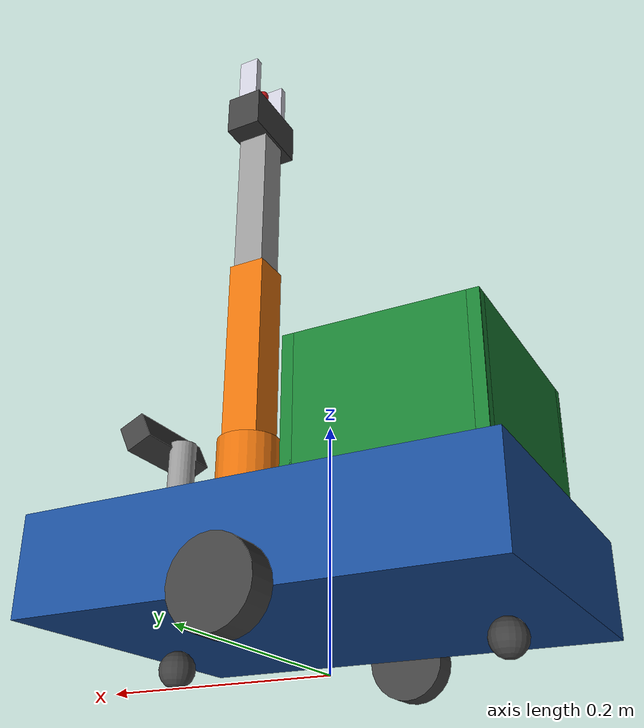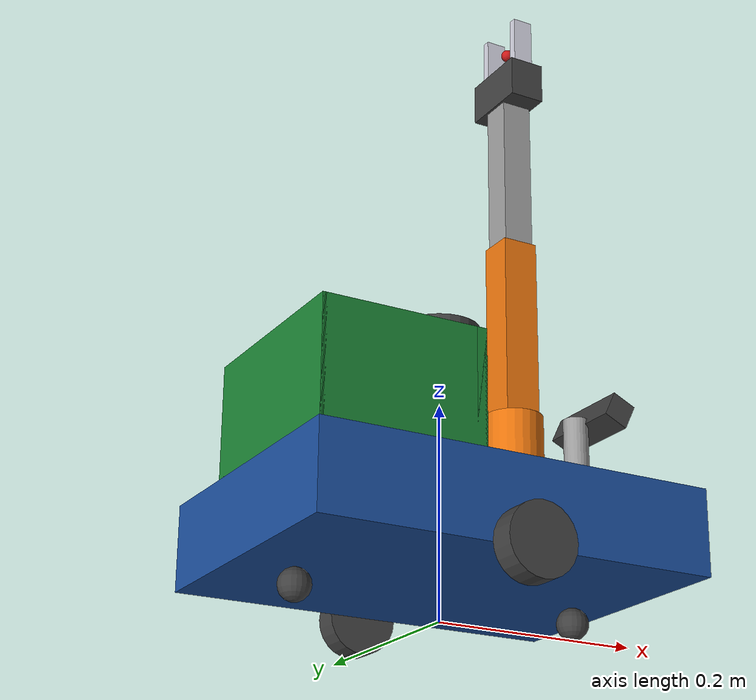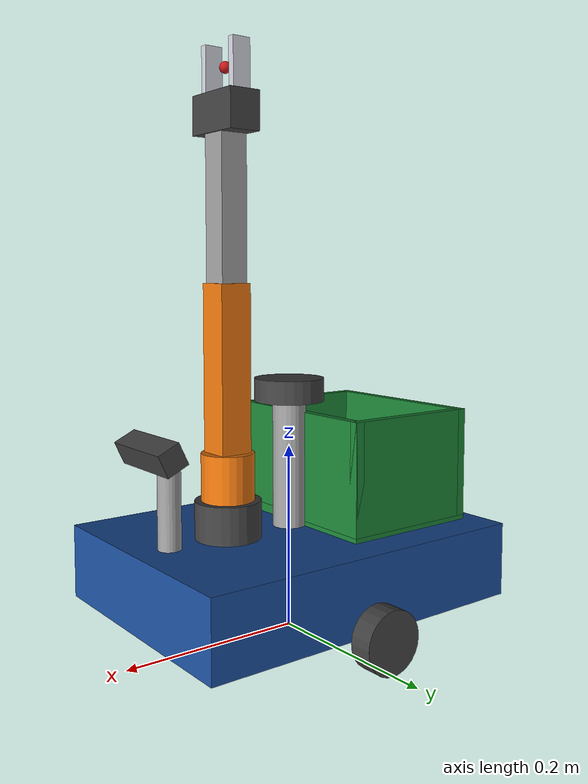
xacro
<?xml version="1.0" ?>
<robot name="autonomous_mobile_manipulator" xmlns:xacro="http://ros.org/wiki/xacro">

  <!-- Materials                 -->
  <material name="black">
    <color rgba="0.1 0.1 0.1 1.0"/>
  </material>

  <material name="dark_grey">
    <color rgba="0.25 0.25 0.25 1.0"/>
  </material>

  <material name="light_grey">
    <color rgba="0.6 0.6 0.6 1.0"/>
  </material>

  <material name="chassis_blue">
    <color rgba="0.1 0.3 0.6 1.0"/>
  </material>

  <material name="bin_green">
    <color rgba="0.1 0.5 0.2 1.0"/>
  </material>

  <material name="arm_orange">
    <color rgba="0.9 0.45 0.05 1.0"/>
  </material>

  <material name="gripper_metal">
    <color rgba="0.8 0.8 0.85 1.0"/>
  </material>

  <material name="sensor_red">
    <color rgba="0.8 0.1 0.1 1.0"/>
  </material>

  <!-- Base Footprint & Link     -->
  <link name="base_footprint"/>

  <joint name="base_joint" type="fixed">
    <parent link="base_footprint"/>
    <child link="base_link" />
    <origin xyz="0 0 0.033" rpy="0 0 0"/>
  </joint>

  <link name="base_link">
    <!-- Main base plate -->
    <visual>
      <origin xyz="0 0 0.04" rpy="0 0 0"/>
      <geometry>
        <box size="0.38 0.28 0.08"/>
      </geometry>
      <material name="chassis_blue"/>
    </visual>
    <collision>
      <origin xyz="0 0 0.04" rpy="0 0 0"/>
      <geometry>
        <box size="0.38 0.28 0.08"/>
      </geometry>
    </collision>

    <inertial>
      <origin xyz="-0.02 0 0.05" rpy="0 0 0"/>
      <mass value="4.5"/>
      <inertia ixx="0.04" ixy="0.0" ixz="0.0"
               iyy="0.06" iyz="0.0"
               izz="0.08" />
    </inertial>
  </link>

  <!-- Wheels                    -->
  <!-- Left Wheel -->
  <joint name="wheel_left_joint" type="continuous">
    <parent link="base_link"/>
    <child link="wheel_left_link"/>
    <origin xyz="0.0 0.155 0.0" rpy="-1.570796 0 0"/>
    <axis xyz="0 0 1"/>
  </joint>

  <link name="wheel_left_link">
    <visual>
      <origin xyz="0 0 0" rpy="0 0 0"/>
      <geometry>
        <cylinder length="0.025" radius="0.033"/>
      </geometry>
      <material name="dark_grey"/>
    </visual>
    <collision>
      <origin xyz="0 0 0" rpy="0 0 0"/>
      <geometry>
        <cylinder length="0.025" radius="0.033"/>
      </geometry>
    </collision>
    <inertial>
      <origin xyz="0 0 0" />
      <mass value="0.1" />
      <inertia ixx="0.0001" ixy="0.0" ixz="0.0"
               iyy="0.0001" iyz="0.0"
               izz="0.0001" />
    </inertial>
  </link>

  <!-- Right Wheel -->
  <joint name="wheel_right_joint" type="continuous">
    <parent link="base_link"/>
    <child link="wheel_right_link"/>
    <origin xyz="0.0 -0.155 0.0" rpy="-1.570796 0 0"/>
    <axis xyz="0 0 1"/>
  </joint>

  <link name="wheel_right_link">
    <visual>
      <origin xyz="0 0 0" rpy="0 0 0"/>
      <geometry>
        <cylinder length="0.025" radius="0.033"/>
      </geometry>
      <material name="dark_grey"/>
    </visual>
    <collision>
      <origin xyz="0 0 0" rpy="0 0 0"/>
      <geometry>
        <cylinder length="0.025" radius="0.033"/>
      </geometry>
    </collision>
    <inertial>
      <origin xyz="0 0 0" />
      <mass value="0.1" />
      <inertia ixx="0.0001" ixy="0.0" ixz="0.0"
               iyy="0.0001" iyz="0.0"
               izz="0.0001" />
    </inertial>
  </link>

  <!-- Front Caster Wheel -->
  <joint name="caster_front_joint" type="fixed">
    <parent link="base_link"/>
    <child link="caster_front_link"/>
    <origin xyz="0.14 0.0 -0.018" rpy="0 0 0"/>
  </joint>

  <link name="caster_front_link">
    <visual>
      <origin xyz="0 0 0" rpy="0 0 0"/>
      <geometry>
        <sphere radius="0.015"/>
      </geometry>
      <material name="dark_grey"/>
    </visual>
    <collision>
      <origin xyz="0 0 0" rpy="0 0 0"/>
      <geometry>
        <sphere radius="0.015"/>
      </geometry>
    </collision>
    <inertial>
      <origin xyz="0 0 0" />
      <mass value="0.05" />
      <inertia ixx="0.00001" ixy="0.0" ixz="0.0"
               iyy="0.00001" iyz="0.0"
               izz="0.00001" />
    </inertial>
  </link>

  <!-- Rear Caster Wheel -->
  <joint name="caster_rear_joint" type="fixed">
    <parent link="base_link"/>
    <child link="caster_rear_link"/>
    <origin xyz="-0.14 0.0 -0.018" rpy="0 0 0"/>
  </joint>

  <link name="caster_rear_link">
    <visual>
      <origin xyz="0 0 0" rpy="0 0 0"/>
      <geometry>
        <sphere radius="0.015"/>
      </geometry>
      <material name="dark_grey"/>
    </visual>
    <collision>
      <origin xyz="0 0 0" rpy="0 0 0"/>
      <geometry>
        <sphere radius="0.015"/>
      </geometry>
    </collision>
    <inertial>
      <origin xyz="0 0 0" />
      <mass value="0.05" />
      <inertia ixx="0.00001" ixy="0.0" ixz="0.0"
               iyy="0.00001" iyz="0.0"
               izz="0.00001" />
    </inertial>
  </link>

  <!-- Built-in Litter Waste Bin -->
  <!-- Mounted on the rear deck of the robot -->
  <joint name="waste_bin_joint" type="fixed">
    <parent link="base_link"/>
    <child link="waste_bin_link"/>
    <origin xyz="-0.09 0 0.08" rpy="0 0 0"/>
  </joint>

  <link name="waste_bin_link">
    <!-- Bin Bottom Plate -->
    <visual>
      <origin xyz="0 0 0.005" rpy="0 0 0"/>
      <geometry>
        <box size="0.16 0.20 0.01"/>
      </geometry>
      <material name="bin_green"/>
    </visual>
    <collision>
      <origin xyz="0 0 0.005" rpy="0 0 0"/>
      <geometry>
        <box size="0.16 0.20 0.01"/>
      </geometry>
    </collision>

    <!-- Bin Front Wall -->
    <visual>
      <origin xyz="0.075 0 0.065" rpy="0 0 0"/>
      <geometry>
        <box size="0.01 0.20 0.12"/>
      </geometry>
      <material name="bin_green"/>
    </visual>
    <collision>
      <origin xyz="0.075 0 0.065" rpy="0 0 0"/>
      <geometry>
        <box size="0.01 0.20 0.12"/>
      </geometry>
    </collision>

    <!-- Bin Rear Wall -->
    <visual>
      <origin xyz="-0.075 0 0.065" rpy="0 0 0"/>
      <geometry>
        <box size="0.01 0.20 0.12"/>
      </geometry>
      <material name="bin_green"/>
    </visual>
    <collision>
      <origin xyz="-0.075 0 0.065" rpy="0 0 0"/>
      <geometry>
        <box size="0.01 0.20 0.12"/>
      </geometry>
    </collision>

    <!-- Bin Left Wall -->
    <visual>
      <origin xyz="0 0.095 0.065" rpy="0 0 0"/>
      <geometry>
        <box size="0.16 0.01 0.12"/>
      </geometry>
      <material name="bin_green"/>
    </visual>
    <collision>
      <origin xyz="0 0.095 0.065" rpy="0 0 0"/>
      <geometry>
        <box size="0.16 0.01 0.12"/>
      </geometry>
    </collision>

    <!-- Bin Right Wall -->
    <visual>
      <origin xyz="0 -0.095 0.065" rpy="0 0 0"/>
      <geometry>
        <box size="0.16 0.01 0.12"/>
      </geometry>
      <material name="bin_green"/>
    </visual>
    <collision>
      <origin xyz="0 -0.095 0.065" rpy="0 0 0"/>
      <geometry>
        <box size="0.16 0.01 0.12"/>
      </geometry>
    </collision>

    <inertial>
      <origin xyz="0 0 0.06" rpy="0 0 0"/>
      <mass value="0.4"/>
      <inertia ixx="0.002" ixy="0.0" ixz="0.0"
               iyy="0.002" iyz="0.0"
               izz="0.002" />
    </inertial>
  </link>

  <!-- Sensor Mast & LiDAR       -->
  <!-- Elevated sensor tower between the bin and arm -->
  <joint name="lidar_mast_joint" type="fixed">
    <parent link="base_link"/>
    <child link="lidar_mast_link"/>
    <origin xyz="0.0 0 0.08" rpy="0 0 0"/>
  </joint>

  <link name="lidar_mast_link">
    <visual>
      <origin xyz="0 0 0.07" rpy="0 0 0"/>
      <geometry>
        <cylinder length="0.14" radius="0.018"/>
      </geometry>
      <material name="light_grey"/>
    </visual>
    <collision>
      <origin xyz="0 0 0.07" rpy="0 0 0"/>
      <geometry>
        <cylinder length="0.14" radius="0.018"/>
      </geometry>
    </collision>
    <inertial>
      <origin xyz="0 0 0.07" rpy="0 0 0"/>
      <mass value="0.1"/>
      <inertia ixx="0.0001" ixy="0" ixz="0" iyy="0.0001" iyz="0" izz="0.0001"/>
    </inertial>
  </link>

  <joint name="scan_joint" type="fixed">
    <parent link="lidar_mast_link"/>
    <child link="base_scan"/>
    <origin xyz="0 0 0.14" rpy="0 0 0"/>
  </joint>

  <link name="base_scan">
    <visual>
      <origin xyz="0 0 0.01" rpy="0 0 0"/>
      <geometry>
        <cylinder length="0.025" radius="0.038"/>
      </geometry>
      <material name="dark_grey"/>
    </visual>
    <collision>
      <origin xyz="0 0 0.01" rpy="0 0 0"/>
      <geometry>
        <cylinder length="0.025" radius="0.038"/>
      </geometry>
    </collision>
    <inertial>
      <mass value="0.12" />
      <origin xyz="0 0 0" />
      <inertia ixx="0.0001" ixy="0.0" ixz="0.0"
               iyy="0.0001" iyz="0.0"
               izz="0.0001" />
    </inertial>
  </link>

  <!-- RGB-D Camera Mount        -->
  <!-- Angled downward on front of chassis to detect ground litter -->
  <joint name="camera_mount_joint" type="fixed">
    <parent link="base_link"/>
    <child link="camera_mount_link"/>
    <origin xyz="0.15 0 0.08" rpy="0 0 0"/>
  </joint>

  <link name="camera_mount_link">
    <visual>
      <origin xyz="0 0 0.05" rpy="0 0 0"/>
      <geometry>
        <cylinder length="0.10" radius="0.012"/>
      </geometry>
      <material name="light_grey"/>
    </visual>
    <collision>
      <origin xyz="0 0 0.05" rpy="0 0 0"/>
      <geometry>
        <cylinder length="0.10" radius="0.012"/>
      </geometry>
    </collision>
    <inertial>
      <mass value="0.05"/>
      <origin xyz="0 0 0.05"/>
      <inertia ixx="0.00005" ixy="0" ixz="0" iyy="0.00005" iyz="0" izz="0.00005"/>
    </inertial>
  </link>

  <joint name="camera_joint" type="fixed">
    <parent link="camera_mount_link"/>
    <child link="camera_link"/>
    <!-- Angled downwards by ~26 deg (0.45 rad) to face ground litter -->
    <origin xyz="0.02 0 0.10" rpy="0 0.45 0"/>
  </joint>

  <link name="camera_link">
    <visual>
      <origin xyz="0 0 0" rpy="0 0 0"/>
      <geometry>
        <box size="0.025 0.09 0.025"/>
      </geometry>
      <material name="dark_grey"/>
    </visual>
    <collision>
      <origin xyz="0 0 0" rpy="0 0 0"/>
      <geometry>
        <box size="0.025 0.09 0.025"/>
      </geometry>
    </collision>
    <inertial>
      <mass value="0.08"/>
      <origin xyz="0 0 0"/>
      <inertia ixx="0.0001" ixy="0" ixz="0" iyy="0.0001" iyz="0" izz="0.0001"/>
    </inertial>
  </link>

  <!-- Standard ROS Optical Frames -->
  <joint name="camera_optical_joint" type="fixed">
    <parent link="camera_link"/>
    <child link="camera_optical_frame"/>
    <origin xyz="0 0 0" rpy="-1.570796 0 -1.570796"/>
  </joint>

  <link name="camera_optical_frame"/>

  <!-- 4-DOF Robotic Manipulator -->
  <!-- Arm Pedestal -->
  <joint name="arm_base_joint" type="fixed">
    <parent link="base_link"/>
    <child link="arm_base_link"/>
    <origin xyz="0.08 0 0.08" rpy="0 0 0"/>
  </joint>

  <link name="arm_base_link">
    <visual>
      <origin xyz="0 0 0.02" rpy="0 0 0"/>
      <geometry>
        <cylinder length="0.04" radius="0.035"/>
      </geometry>
      <material name="dark_grey"/>
    </visual>
    <collision>
      <origin xyz="0 0 0.02" rpy="0 0 0"/>
      <geometry>
        <cylinder length="0.04" radius="0.035"/>
      </geometry>
    </collision>
    <inertial>
      <origin xyz="0 0 0.02" rpy="0 0 0"/>
      <mass value="0.2"/>
      <inertia ixx="0.0002" ixy="0" ixz="0" iyy="0.0002" iyz="0" izz="0.0002"/>
    </inertial>
  </link>

  <!-- Joint 1: Waist / Pan (Rotation about Z: Yaw) -->
  <joint name="arm_waist_joint" type="revolute">
    <parent link="arm_base_link"/>
    <child link="arm_waist_link"/>
    <origin xyz="0 0 0.04" rpy="0 0 0"/>
    <axis xyz="0 0 1"/>
    <limit lower="-3.14159" upper="3.14159" effort="20.0" velocity="2.0"/>
    <dynamics damping="0.5" friction="0.1"/>
  </joint>

  <link name="arm_waist_link">
    <visual>
      <origin xyz="0 0 0.025" rpy="0 0 0"/>
      <geometry>
        <cylinder length="0.05" radius="0.028"/>
      </geometry>
      <material name="arm_orange"/>
    </visual>
    <collision>
      <origin xyz="0 0 0.025" rpy="0 0 0"/>
      <geometry>
        <cylinder length="0.05" radius="0.028"/>
      </geometry>
    </collision>
    <inertial>
      <origin xyz="0 0 0.025" rpy="0 0 0"/>
      <mass value="0.18"/>
      <inertia ixx="0.0002" ixy="0" ixz="0" iyy="0.0002" iyz="0" izz="0.0002"/>
    </inertial>
  </link>

  <!-- Joint 2: Shoulder Pitch (Rotation about Y) -->
  <joint name="arm_shoulder_joint" type="revolute">
    <parent link="arm_waist_link"/>
    <child link="arm_upper_arm_link"/>
    <origin xyz="0 0 0.045" rpy="0 0 0"/>
    <axis xyz="0 1 0"/>
    <limit lower="-1.8" upper="1.8" effort="25.0" velocity="2.0"/>
    <dynamics damping="0.5" friction="0.1"/>
  </joint>

  <link name="arm_upper_arm_link">
    <visual>
      <origin xyz="0 0 0.09" rpy="0 0 0"/>
      <geometry>
        <box size="0.035 0.035 0.18"/>
      </geometry>
      <material name="arm_orange"/>
    </visual>
    <collision>
      <origin xyz="0 0 0.09" rpy="0 0 0"/>
      <geometry>
        <box size="0.035 0.035 0.18"/>
      </geometry>
    </collision>
    <inertial>
      <origin xyz="0 0 0.09" rpy="0 0 0"/>
      <mass value="0.25"/>
      <inertia ixx="0.0008" ixy="0" ixz="0" iyy="0.0008" iyz="0" izz="0.0001"/>
    </inertial>
  </link>

  <!-- Joint 3: Elbow Pitch (Rotation about Y) -->
  <joint name="arm_elbow_joint" type="revolute">
    <parent link="arm_upper_arm_link"/>
    <child link="arm_forearm_link"/>
    <origin xyz="0 0 0.18" rpy="0 0 0"/>
    <axis xyz="0 1 0"/>
    <limit lower="-2.2" upper="2.2" effort="20.0" velocity="2.0"/>
    <dynamics damping="0.5" friction="0.1"/>
  </joint>

  <link name="arm_forearm_link">
    <visual>
      <origin xyz="0 0 0.075" rpy="0 0 0"/>
      <geometry>
        <box size="0.03 0.03 0.15"/>
      </geometry>
      <material name="light_grey"/>
    </visual>
    <collision>
      <origin xyz="0 0 0.075" rpy="0 0 0"/>
      <geometry>
        <box size="0.03 0.03 0.15"/>
      </geometry>
    </collision>
    <inertial>
      <origin xyz="0 0 0.075" rpy="0 0 0"/>
      <mass value="0.18"/>
      <inertia ixx="0.0004" ixy="0" ixz="0" iyy="0.0004" iyz="0" izz="0.0001"/>
    </inertial>
  </link>

  <!-- Joint 4: Wrist Pitch (Rotation about Y) -->
  <joint name="arm_wrist_joint" type="revolute">
    <parent link="arm_forearm_link"/>
    <child link="gripper_base_link"/>
    <origin xyz="0 0 0.15" rpy="0 0 0"/>
    <axis xyz="0 1 0"/>
    <limit lower="-2.0" upper="2.0" effort="15.0" velocity="2.0"/>
    <dynamics damping="0.3" friction="0.05"/>
  </joint>

  <link name="gripper_base_link">
    <visual>
      <origin xyz="0 0 0.02" rpy="0 0 0"/>
      <geometry>
        <box size="0.035 0.07 0.04"/>
      </geometry>
      <material name="dark_grey"/>
    </visual>
    <collision>
      <origin xyz="0 0 0.02" rpy="0 0 0"/>
      <geometry>
        <box size="0.035 0.07 0.04"/>
      </geometry>
    </collision>
    <inertial>
      <origin xyz="0 0 0.02" rpy="0 0 0"/>
      <mass value="0.12"/>
      <inertia ixx="0.0001" ixy="0" ixz="0" iyy="0.0001" iyz="0" izz="0.0001"/>
    </inertial>
  </link>

  <!-- Gripper Left Finger -->
  <joint name="gripper_left_joint" type="prismatic">
    <parent link="gripper_base_link"/>
    <child link="gripper_left_finger"/>
    <origin xyz="0 0.025 0.04" rpy="0 0 0"/>
    <axis xyz="0 1 0"/>
    <limit lower="-0.015" upper="0.02" effort="10.0" velocity="0.2"/>
    <dynamics damping="0.1" friction="0.05"/>
  </joint>

  <link name="gripper_left_finger">
    <visual>
      <origin xyz="0 0 0.025" rpy="0 0 0"/>
      <geometry>
        <box size="0.02 0.008 0.05"/>
      </geometry>
      <material name="gripper_metal"/>
    </visual>
    <collision>
      <origin xyz="0 0 0.025" rpy="0 0 0"/>
      <geometry>
        <box size="0.02 0.008 0.05"/>
      </geometry>
    </collision>
    <inertial>
      <origin xyz="0 0 0.025" rpy="0 0 0"/>
      <mass value="0.03"/>
      <inertia ixx="0.00001" ixy="0" ixz="0" iyy="0.00001" iyz="0" izz="0.00001"/>
    </inertial>
  </link>

  <!-- Gripper Right Finger -->
  <joint name="gripper_right_joint" type="prismatic">
    <parent link="gripper_base_link"/>
    <child link="gripper_right_finger"/>
    <origin xyz="0 -0.025 0.04" rpy="0 0 0"/>
    <axis xyz="0 -1 0"/>
    <limit lower="-0.015" upper="0.02" effort="10.0" velocity="0.2"/>
    <dynamics damping="0.1" friction="0.05"/>
  </joint>

  <link name="gripper_right_finger">
    <visual>
      <origin xyz="0 0 0.025" rpy="0 0 0"/>
      <geometry>
        <box size="0.02 0.008 0.05"/>
      </geometry>
      <material name="gripper_metal"/>
    </visual>
    <collision>
      <origin xyz="0 0 0.025" rpy="0 0 0"/>
      <geometry>
        <box size="0.02 0.008 0.05"/>
      </geometry>
    </collision>
    <inertial>
      <origin xyz="0 0 0.025" rpy="0 0 0"/>
      <mass value="0.03"/>
      <inertia ixx="0.00001" ixy="0" ixz="0" iyy="0.00001" iyz="0" izz="0.00001"/>
    </inertial>
  </link>

  <!-- Central Gripper TCP Link -->
  <joint name="gripper_center_joint" type="fixed">
    <parent link="gripper_base_link"/>
    <child link="gripper_link"/>
    <origin xyz="0 0 0.065" rpy="0 0 0"/>
  </joint>

  <link name="gripper_link">
    <visual>
      <origin xyz="0 0 0" rpy="0 0 0"/>
      <geometry>
        <sphere radius="0.006"/>
      </geometry>
      <material name="sensor_red"/>
    </visual>
    <inertial>
      <mass value="0.01"/>
      <origin xyz="0 0 0"/>
      <inertia ixx="0.00001" ixy="0" ixz="0" iyy="0.00001" iyz="0" izz="0.00001"/>
    </inertial>
  </link>

  <!-- Gazebo Sensors            -->

  <!-- LiDAR Sensor -->
  <gazebo reference="base_scan">
    <sensor name="lidar" type="gpu_lidar">
      <pose>0 0 0 0 0 0</pose>
      <update_rate>10</update_rate>
      <topic>/scan</topic>
      <gz_frame_id>base_scan</gz_frame_id>
      <ray>
        <scan>
          <horizontal>
            <samples>360</samples>
            <resolution>1</resolution>
            <min_angle>-3.14159</min_angle>
            <max_angle>3.14159</max_angle>
          </horizontal>
        </scan>
        <range>
          <min>0.12</min>
          <max>10.0</max>
          <resolution>0.01</resolution>
        </range>
      </ray>
    </sensor>
  </gazebo>

  <!-- RGB-D Camera Sensor -->
  <gazebo reference="camera_link">
    <sensor name="camera" type="rgbd_camera">
      <pose>0 0 0 0 0 0</pose>
      <always_on>1</always_on>
      <update_rate>20</update_rate>
      <topic>/camera</topic>
      <gz_frame_id>camera_optical_frame</gz_frame_id>
      <camera>
        <horizontal_fov>1.15</horizontal_fov>
        <image>
          <width>640</width>
          <height>480</height>
          <format>R8G8B8</format>
        </image>
        <clip>
          <near>0.1</near>
          <far>8.0</far>
        </clip>
        <depth_camera>
          <clip>
            <near>0.1</near>
            <far>8.0</far>
          </clip>
        </depth_camera>
      </camera>
    </sensor>
  </gazebo>

  <!-- Differential Drive Plugin -->
  <gazebo>
    <plugin
      filename="gz-sim-diff-drive-system"
      name="gz::sim::systems::DiffDrive">
      <left_joint>wheel_left_joint</left_joint>
      <right_joint>wheel_right_joint</right_joint>
      <wheel_separation>0.31</wheel_separation>
      <wheel_radius>0.033</wheel_radius>
      <topic>/cmd_vel</topic>
      <odom_topic>/odom</odom_topic>
      <tf_topic>/model/autonomous_mobile_manipulator/tf</tf_topic>
      <frame_id>odom</frame_id>
      <child_frame_id>base_footprint</child_frame_id>
      <odom_publish_frequency>30</odom_publish_frequency>
    </plugin>
  </gazebo>

  <!-- Joint State Publisher Plugin -->
  <gazebo>
    <plugin
      filename="gz-sim-joint-state-publisher-system"
      name="gz::sim::systems::JointStatePublisher">
      <joint_name>wheel_left_joint</joint_name>
      <joint_name>wheel_right_joint</joint_name>
      <joint_name>arm_waist_joint</joint_name>
      <joint_name>arm_shoulder_joint</joint_name>
      <joint_name>arm_elbow_joint</joint_name>
      <joint_name>arm_wrist_joint</joint_name>
      <joint_name>gripper_left_joint</joint_name>
      <joint_name>gripper_right_joint</joint_name>
    </plugin>
  </gazebo>

  <!-- Joint Position Controllers for Manipulator -->
  <gazebo>
    <plugin filename="gz-sim-joint-position-controller-system" name="gz::sim::systems::JointPositionController">
      <joint_name>arm_waist_joint</joint_name>
      <sub_topic>/arm_waist/cmd_pos</sub_topic>
      <p_gain>80.0</p_gain>
      <i_gain>1.0</i_gain>
      <d_gain>10.0</d_gain>
    </plugin>
    <plugin filename="gz-sim-joint-position-controller-system" name="gz::sim::systems::JointPositionController">
      <joint_name>arm_shoulder_joint</joint_name>
      <sub_topic>/arm_shoulder/cmd_pos</sub_topic>
      <p_gain>120.0</p_gain>
      <i_gain>2.0</i_gain>
      <d_gain>15.0</d_gain>
    </plugin>
    <plugin filename="gz-sim-joint-position-controller-system" name="gz::sim::systems::JointPositionController">
      <joint_name>arm_elbow_joint</joint_name>
      <sub_topic>/arm_elbow/cmd_pos</sub_topic>
      <p_gain>100.0</p_gain>
      <i_gain>1.0</i_gain>
      <d_gain>12.0</d_gain>
    </plugin>
    <plugin filename="gz-sim-joint-position-controller-system" name="gz::sim::systems::JointPositionController">
      <joint_name>arm_wrist_joint</joint_name>
      <sub_topic>/arm_wrist/cmd_pos</sub_topic>
      <p_gain>50.0</p_gain>
      <i_gain>0.5</i_gain>
      <d_gain>5.0</d_gain>
    </plugin>
    <plugin filename="gz-sim-joint-position-controller-system" name="gz::sim::systems::JointPositionController">
      <joint_name>gripper_left_joint</joint_name>
      <sub_topic>/gripper/cmd_pos</sub_topic>
      <p_gain>40.0</p_gain>
      <i_gain>0.2</i_gain>
      <d_gain>4.0</d_gain>
    </plugin>
    <plugin filename="gz-sim-joint-position-controller-system" name="gz::sim::systems::JointPositionController">
      <joint_name>gripper_right_joint</joint_name>
      <sub_topic>/gripper/cmd_pos</sub_topic>
      <p_gain>40.0</p_gain>
      <i_gain>0.2</i_gain>
      <d_gain>4.0</d_gain>
    </plugin>
  </gazebo>

  <!-- Detachable Joints for 100% Reliable Object Grasping -->
  <gazebo>
    <plugin filename="gz-sim-detachable-joint-system" name="gz::sim::systems::DetachableJoint">
      <parent_link>gripper_base_link</parent_link>
      <child_model>litter_1</child_model>
      <child_link>link</child_link>
      <attach_topic>/litter_1/attach</attach_topic>
      <detach_topic>/litter_1/detach</detach_topic>
    </plugin>
    <plugin filename="gz-sim-detachable-joint-system" name="gz::sim::systems::DetachableJoint">
      <parent_link>gripper_base_link</parent_link>
      <child_model>litter_2</child_model>
      <child_link>link</child_link>
      <attach_topic>/litter_2/attach</attach_topic>
      <detach_topic>/litter_2/detach</detach_topic>
    </plugin>
    <plugin filename="gz-sim-detachable-joint-system" name="gz::sim::systems::DetachableJoint">
      <parent_link>gripper_base_link</parent_link>
      <child_model>litter_3</child_model>
      <child_link>link</child_link>
      <attach_topic>/litter_3/attach</attach_topic>
      <detach_topic>/litter_3/detach</detach_topic>
    </plugin>
    <plugin filename="gz-sim-detachable-joint-system" name="gz::sim::systems::DetachableJoint">
      <parent_link>gripper_base_link</parent_link>
      <child_model>soda_can_red</child_model>
      <child_link>link</child_link>
      <attach_topic>/soda_can_red/attach</attach_topic>
      <detach_topic>/soda_can_red/detach</detach_topic>
    </plugin>
    <plugin filename="gz-sim-detachable-joint-system" name="gz::sim::systems::DetachableJoint">
      <parent_link>gripper_base_link</parent_link>
      <child_model>soda_can_blue</child_model>
      <child_link>link</child_link>
      <attach_topic>/soda_can_blue/attach</attach_topic>
      <detach_topic>/soda_can_blue/detach</detach_topic>
    </plugin>
  </gazebo>

</robot>
